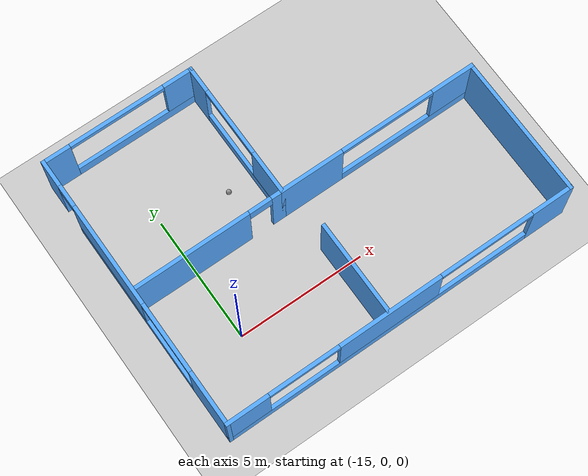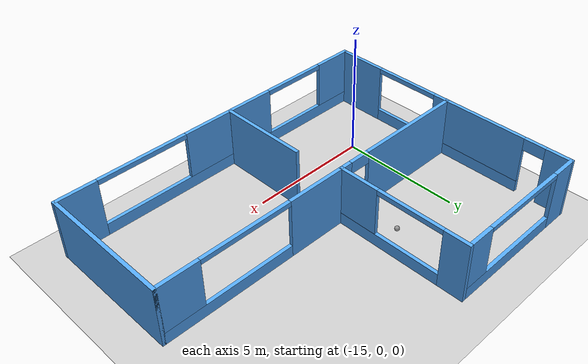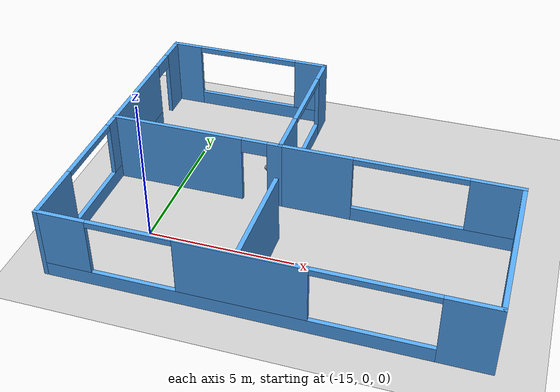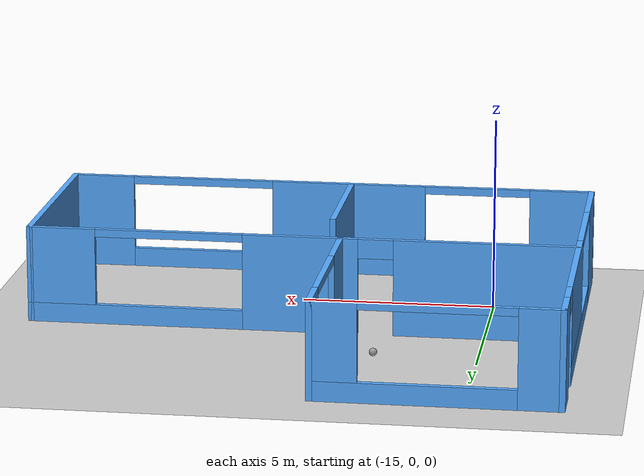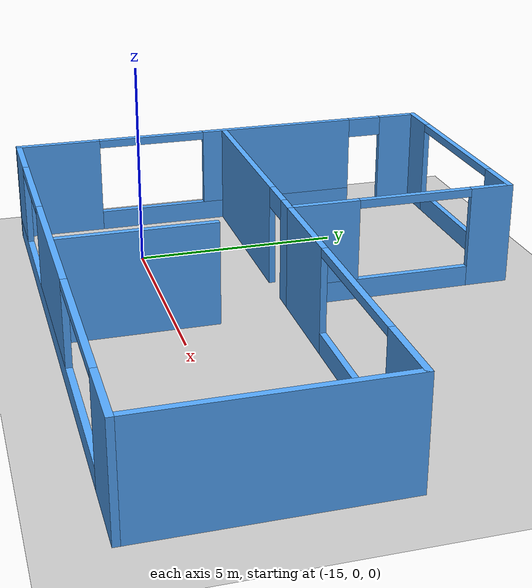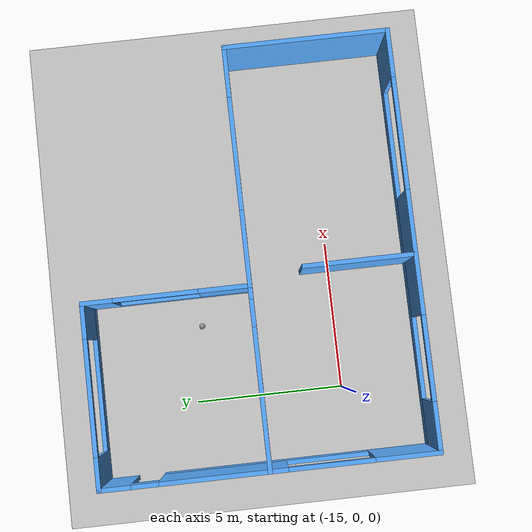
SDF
<sdf version="1.6">
 <world name="default">
  <plugin name="welcome_message" filename="libwelcome_message.so"/>
  <light name="sun" type="directional">
   <pose>0 0 10 0 -0 0</pose>
   <diffuse>0.8 0.8 0.8 1</diffuse>
   <specular>0.2 0.2 0.2 1</specular>
   <attenuation>
    <range>1000</range>
    <constant>0.9</constant>
    <linear>0.01</linear>
    <quadratic>0.001</quadratic>
   </attenuation>
   <direction>-0.5 0.1 -0.9</direction>
  </light>
  <model name="ground_plane">
   <static>1</static>
   <link name="link">
    <collision name="collision">
     <geometry><plane><normal>0 0 1</normal><size>100 100</size></plane></geometry>
     <surface>
      <contact><collide_bitmask>65535</collide_bitmask></contact>
      <friction><ode><mu>100</mu><mu2>50</mu2></ode></friction>
     </surface>
    </collision>
    <visual name="visual">
     <cast_shadows>0</cast_shadows>
     <geometry><plane><normal>0 0 1</normal><size>100 100</size></plane></geometry>
     <material>
      <script><uri>file://media/materials/scripts/gazebo.material</uri><name>Gazebo/Grey</name></script>
     </material>
    </visual>
   </link>
  </model>
  <gravity>0 0 -9.8</gravity>
  <magnetic_field>6e-06 2.3e-05 -4.2e-05</magnetic_field>
  <atmosphere type="adiabatic"/>
  <physics name="default_physics" default="0" type="ode">
   <max_step_size>0.001</max_step_size>
   <real_time_factor>1</real_time_factor>
   <real_time_update_rate>1000</real_time_update_rate>
  </physics>
  <scene><ambient>0.4 0.4 0.4 1</ambient><background>0.7 0.7 0.7 1</background><shadows>1</shadows></scene>
  <spherical_coordinates>
   <surface_model>EARTH_WGS84</surface_model>
   <latitude_deg>0</latitude_deg>
   <longitude_deg>0</longitude_deg>
   <elevation>0</elevation>
   <heading_deg>0</heading_deg>
  </spherical_coordinates>
  <model name="Building">
   <pose>-10.3356 2.78003 0 0 -0 0</pose>
   <link name="Wall_0">
    <pose>-4 5.5 0 0 -0 0</pose>
    <visual name="Wall_0_Visual_0">
     <pose>-2.51087 0 1.25 0 -0 0</pose>
     <geometry><box><size>1.12826 0.15 2.5</size></box></geometry>
     <material>
      <script><uri>file://media/materials/scripts/gazebo.material</uri><name>Gazebo/Grey</name></script>
      <ambient>0.333333 0.666667 1 1</ambient>
     </material>
     <meta><layer>0</layer></meta>
    </visual>
    <collision name="Wall_0_Collision_0">
     <geometry><box><size>1.12826 0.15 2.5</size></box></geometry>
     <pose>-2.51087 0 1.25 0 -0 0</pose>
    </collision>
    <visual name="Wall_0_Visual_1">
     <pose>0.564129 0 0.25 0 -0 0</pose>
     <geometry><box><size>5.02174 0.15 0.5</size></box></geometry>
     <material>
      <script><uri>file://media/materials/scripts/gazebo.material</uri><name>Gazebo/Grey</name></script>
      <ambient>0.333333 0.666667 1 1</ambient>
     </material>
     <meta><layer>0</layer></meta>
    </visual>
    <collision name="Wall_0_Collision_1">
     <geometry><box><size>5.02174 0.15 0.5</size></box></geometry>
     <pose>0.564129 0 0.25 0 -0 0</pose>
    </collision>
    <visual name="Wall_0_Visual_2">
     <pose>2.46413 0 1.5 0 -0 0</pose>
     <geometry><box><size>1.22174 0.15 2</size></box></geometry>
     <material>
      <script><uri>file://media/materials/scripts/gazebo.material</uri><name>Gazebo/Grey</name></script>
      <ambient>0.333333 0.666667 1 1</ambient>
     </material>
     <meta><layer>0</layer></meta>
    </visual>
    <collision name="Wall_0_Collision_2">
     <geometry><box><size>1.22174 0.15 2</size></box></geometry>
     <pose>2.46413 0 1.5 0 -0 0</pose>
    </collision>
    <visual name="Wall_0_Visual_3">
     <pose>-0.046741 0 2.4 0 -0 0</pose>
     <geometry><box><size>3.8 0.15 0.2</size></box></geometry>
     <material>
      <script><uri>file://media/materials/scripts/gazebo.material</uri><name>Gazebo/Grey</name></script>
      <ambient>0.333333 0.666667 1 1</ambient>
     </material>
     <meta><layer>0</layer></meta>
    </visual>
    <collision name="Wall_0_Collision_3">
     <geometry><box><size>3.8 0.15 0.2</size></box></geometry>
     <pose>-0.046741 0 2.4 0 -0 0</pose>
    </collision>
   </link>
   <link name="Wall_1">
    <pose>-1 2.75 0 0 0 -1.5708</pose>
    <visual name="Wall_1_Visual_0">
     <pose>-2.28702 0 1.25 0 -0 0</pose>
     <geometry><box><size>1.07597 0.15 2.5</size></box></geometry>
     <material>
      <script><uri>file://media/materials/scripts/gazebo.material</uri><name>Gazebo/Grey</name></script>
      <ambient>0.333333 0.666667 1 1</ambient>
     </material>
     <meta><layer>0</layer></meta>
    </visual>
    <collision name="Wall_1_Collision_0">
     <geometry><box><size>1.07597 0.15 2.5</size></box></geometry>
     <pose>-2.28702 0 1.25 0 -0 0</pose>
    </collision>
    <visual name="Wall_1_Visual_1">
     <pose>0.537983 0 0.25 0 -0 0</pose>
     <geometry><box><size>4.57403 0.15 0.5</size></box></geometry>
     <material>
      <script><uri>file://media/materials/scripts/gazebo.material</uri><name>Gazebo/Grey</name></script>
      <ambient>0.333333 0.666667 1 1</ambient>
     </material>
     <meta><layer>0</layer></meta>
    </visual>
    <collision name="Wall_1_Collision_1">
     <geometry><box><size>4.57403 0.15 0.5</size></box></geometry>
     <pose>0.537983 0 0.25 0 -0 0</pose>
    </collision>
    <visual name="Wall_1_Visual_2">
     <pose>1.93798 0 1.5 0 -0 0</pose>
     <geometry><box><size>1.77403 0.15 2</size></box></geometry>
     <material>
      <script><uri>file://media/materials/scripts/gazebo.material</uri><name>Gazebo/Grey</name></script>
      <ambient>0.333333 0.666667 1 1</ambient>
     </material>
     <meta><layer>0</layer></meta>
    </visual>
    <collision name="Wall_1_Collision_2">
     <geometry><box><size>1.77403 0.15 2</size></box></geometry>
     <pose>1.93798 0 1.5 0 -0 0</pose>
    </collision>
    <visual name="Wall_1_Visual_3">
     <pose>-0.349034 0 2.4 0 -0 0</pose>
     <geometry><box><size>2.8 0.15 0.2</size></box></geometry>
     <material>
      <script><uri>file://media/materials/scripts/gazebo.material</uri><name>Gazebo/Grey</name></script>
      <ambient>0.333333 0.666667 1 1</ambient>
     </material>
     <meta><layer>0</layer></meta>
    </visual>
    <collision name="Wall_1_Collision_3">
     <geometry><box><size>2.8 0.15 0.2</size></box></geometry>
     <pose>-0.349034 0 2.4 0 -0 0</pose>
    </collision>
   </link>
   <link name="Wall_2">
    <pose>3 0 0 0 -0 0</pose>
    <visual name="Wall_2_Visual_0">
     <pose>-2.78896 0 1.25 0 -0 0</pose>
     <geometry><box><size>2.57208 0.15 2.5</size></box></geometry>
     <material>
      <script><uri>file://media/materials/scripts/gazebo.material</uri><name>Gazebo/Grey</name></script>
      <ambient>0.333333 0.666667 1 1</ambient>
     </material>
     <meta><layer>0</layer></meta>
    </visual>
    <collision name="Wall_2_Collision_0">
     <geometry><box><size>2.57208 0.15 2.5</size></box></geometry>
     <pose>-2.78896 0 1.25 0 -0 0</pose>
    </collision>
    <visual name="Wall_2_Visual_1">
     <pose>1.28604 0 0.25 0 -0 0</pose>
     <geometry><box><size>5.57791 0.15 0.5</size></box></geometry>
     <material>
      <script><uri>file://media/materials/scripts/gazebo.material</uri><name>Gazebo/Grey</name></script>
      <ambient>0.333333 0.666667 1 1</ambient>
     </material>
     <meta><layer>0</layer></meta>
    </visual>
    <collision name="Wall_2_Collision_1">
     <geometry><box><size>5.57791 0.15 0.5</size></box></geometry>
     <pose>1.28604 0 0.25 0 -0 0</pose>
    </collision>
    <visual name="Wall_2_Visual_2">
     <pose>3.18604 0 1.5 0 -0 0</pose>
     <geometry><box><size>1.77791 0.15 2</size></box></geometry>
     <material>
      <script><uri>file://media/materials/scripts/gazebo.material</uri><name>Gazebo/Grey</name></script>
      <ambient>0.333333 0.666667 1 1</ambient>
     </material>
     <meta><layer>0</layer></meta>
    </visual>
    <collision name="Wall_2_Collision_2">
     <geometry><box><size>1.77791 0.15 2</size></box></geometry>
     <pose>3.18604 0 1.5 0 -0 0</pose>
    </collision>
    <visual name="Wall_2_Visual_3">
     <pose>0.397085 0 2.4 0 -0 0</pose>
     <geometry><box><size>3.8 0.15 0.2</size></box></geometry>
     <material>
      <script><uri>file://media/materials/scripts/gazebo.material</uri><name>Gazebo/Grey</name></script>
      <ambient>0.333333 0.666667 1 1</ambient>
     </material>
     <meta><layer>0</layer></meta>
    </visual>
    <collision name="Wall_2_Collision_3">
     <geometry><box><size>3.8 0.15 0.2</size></box></geometry>
     <pose>0.397085 0 2.4 0 -0 0</pose>
    </collision>
   </link>
   <link name="Wall_3">
    <collision name="Wall_3_Collision">
     <geometry><box><size>5.65 0.15 2.5</size></box></geometry>
     <pose>0 0 1.25 0 -0 0</pose>
    </collision>
    <visual name="Wall_3_Visual">
     <pose>0 0 1.25 0 -0 0</pose>
     <geometry><box><size>5.65 0.15 2.5</size></box></geometry>
     <material>
      <script><uri>file://media/materials/scripts/gazebo.material</uri><name>Gazebo/Grey</name></script>
      <ambient>0.333333 0.666667 1 1</ambient>
     </material>
     <meta><layer>0</layer></meta>
    </visual>
    <pose>7 -2.75 0 0 0 -1.5708</pose>
   </link>
   <link name="Wall_4">
    <pose>0 -5.5 0 0 -0 3.14159</pose>
    <visual name="Wall_4_Visual_0">
     <pose>-6.2265 0 1.25 0 -0 0</pose>
     <geometry><box><size>1.697 0.15 2.5</size></box></geometry>
     <material>
      <script><uri>file://media/materials/scripts/gazebo.material</uri><name>Gazebo/Grey</name></script>
      <ambient>0.333333 0.666667 1 1</ambient>
     </material>
     <meta><layer>0</layer></meta>
    </visual>
    <collision name="Wall_4_Collision_0">
     <geometry><box><size>1.697 0.15 2.5</size></box></geometry>
     <pose>-6.2265 0 1.25 0 -0 0</pose>
    </collision>
    <visual name="Wall_4_Visual_1">
     <pose>0.8485 0 0.25 0 -0 0</pose>
     <geometry><box><size>12.453 0.15 0.5</size></box></geometry>
     <material>
      <script><uri>file://media/materials/scripts/gazebo.material</uri><name>Gazebo/Grey</name></script>
      <ambient>0.333333 0.666667 1 1</ambient>
     </material>
     <meta><layer>0</layer></meta>
    </visual>
    <collision name="Wall_4_Collision_1">
     <geometry><box><size>12.453 0.15 0.5</size></box></geometry>
     <pose>0.8485 0 0.25 0 -0 0</pose>
    </collision>
    <visual name="Wall_4_Visual_2">
     <pose>0.493915 0 1.5 0 -0 0</pose>
     <geometry><box><size>4.14383 0.15 2</size></box></geometry>
     <material>
      <script><uri>file://media/materials/scripts/gazebo.material</uri><name>Gazebo/Grey</name></script>
      <ambient>0.333333 0.666667 1 1</ambient>
     </material>
     <meta><layer>0</layer></meta>
    </visual>
    <collision name="Wall_4_Collision_2">
     <geometry><box><size>4.14383 0.15 2</size></box></geometry>
     <pose>0.493915 0 1.5 0 -0 0</pose>
    </collision>
    <visual name="Wall_4_Visual_3">
     <pose>6.22042 0 1.5 0 -0 0</pose>
     <geometry><box><size>1.70917 0.15 2</size></box></geometry>
     <material>
      <script><uri>file://media/materials/scripts/gazebo.material</uri><name>Gazebo/Grey</name></script>
      <ambient>0.333333 0.666667 1 1</ambient>
     </material>
     <meta><layer>0</layer></meta>
    </visual>
    <collision name="Wall_4_Collision_3">
     <geometry><box><size>1.70917 0.15 2</size></box></geometry>
     <pose>6.22042 0 1.5 0 -0 0</pose>
    </collision>
    <visual name="Wall_4_Visual_4">
     <pose>-3.478 0 2.4 0 -0 0</pose>
     <geometry><box><size>3.8 0.15 0.2</size></box></geometry>
     <material>
      <script><uri>file://media/materials/scripts/gazebo.material</uri><name>Gazebo/Grey</name></script>
      <ambient>0.333333 0.666667 1 1</ambient>
     </material>
     <meta><layer>0</layer></meta>
    </visual>
    <collision name="Wall_4_Collision_4">
     <geometry><box><size>3.8 0.15 0.2</size></box></geometry>
     <pose>-3.478 0 2.4 0 -0 0</pose>
    </collision>
    <visual name="Wall_4_Visual_5">
     <pose>3.96583 0 2.4 0 -0 0</pose>
     <geometry><box><size>2.8 0.15 0.2</size></box></geometry>
     <material>
      <script><uri>file://media/materials/scripts/gazebo.material</uri><name>Gazebo/Grey</name></script>
      <ambient>0.333333 0.666667 1 1</ambient>
     </material>
     <meta><layer>0</layer></meta>
    </visual>
    <collision name="Wall_4_Collision_5">
     <geometry><box><size>2.8 0.15 0.2</size></box></geometry>
     <pose>3.96583 0 2.4 0 -0 0</pose>
    </collision>
   </link>
   <link name="Wall_5">
    <pose>-7 0 0 0 -0 1.5708</pose>
    <visual name="Wall_5_Visual_0">
     <pose>-4.48668 0 1.25 0 -0 0</pose>
     <geometry><box><size>2.17663 0.15 2.5</size></box></geometry>
     <material>
      <script><uri>file://media/materials/scripts/gazebo.material</uri><name>Gazebo/Grey</name></script>
      <ambient>0.333333 0.666667 1 1</ambient>
     </material>
     <meta><layer>0</layer></meta>
    </visual>
    <collision name="Wall_5_Collision_0">
     <geometry><box><size>2.17663 0.15 2.5</size></box></geometry>
     <pose>-4.48668 0 1.25 0 -0 0</pose>
    </collision>
    <visual name="Wall_5_Visual_1">
     <pose>5.02726 0 1.25 0 -0 0</pose>
     <geometry><box><size>1.09549 0.15 2.5</size></box></geometry>
     <material>
      <script><uri>file://media/materials/scripts/gazebo.material</uri><name>Gazebo/Grey</name></script>
      <ambient>0.333333 0.666667 1 1</ambient>
     </material>
     <meta><layer>0</layer></meta>
    </visual>
    <collision name="Wall_5_Collision_1">
     <geometry><box><size>1.09549 0.15 2.5</size></box></geometry>
     <pose>5.02726 0 1.25 0 -0 0</pose>
    </collision>
    <visual name="Wall_5_Visual_2">
     <pose>0.090572 0 0.25 0 -0 0</pose>
     <geometry><box><size>6.97788 0.15 0.5</size></box></geometry>
     <material>
      <script><uri>file://media/materials/scripts/gazebo.material</uri><name>Gazebo/Grey</name></script>
      <ambient>0.333333 0.666667 1 1</ambient>
     </material>
     <meta><layer>0</layer></meta>
    </visual>
    <collision name="Wall_5_Collision_2">
     <geometry><box><size>6.97788 0.15 0.5</size></box></geometry>
     <pose>0.090572 0 0.25 0 -0 0</pose>
    </collision>
    <visual name="Wall_5_Visual_3">
     <pose>1.49057 0 1.5 0 -0 0</pose>
     <geometry><box><size>4.17788 0.15 2</size></box></geometry>
     <material>
      <script><uri>file://media/materials/scripts/gazebo.material</uri><name>Gazebo/Grey</name></script>
      <ambient>0.333333 0.666667 1 1</ambient>
     </material>
     <meta><layer>0</layer></meta>
    </visual>
    <collision name="Wall_5_Collision_3">
     <geometry><box><size>4.17788 0.15 2</size></box></geometry>
     <pose>1.49057 0 1.5 0 -0 0</pose>
    </collision>
    <visual name="Wall_5_Visual_4">
     <pose>4.02951 0 2.25 0 -0 0</pose>
     <geometry><box><size>0.9 0.15 0.5</size></box></geometry>
     <material>
      <script><uri>file://media/materials/scripts/gazebo.material</uri><name>Gazebo/Grey</name></script>
      <ambient>0.333333 0.666667 1 1</ambient>
     </material>
     <meta><layer>0</layer></meta>
    </visual>
    <collision name="Wall_5_Collision_4">
     <geometry><box><size>0.9 0.15 0.5</size></box></geometry>
     <pose>4.02951 0 2.25 0 -0 0</pose>
    </collision>
    <visual name="Wall_5_Visual_5">
     <pose>-1.99837 0 2.4 0 -0 0</pose>
     <geometry><box><size>2.8 0.15 0.2</size></box></geometry>
     <material>
      <script><uri>file://media/materials/scripts/gazebo.material</uri><name>Gazebo/Grey</name></script>
      <ambient>0.333333 0.666667 1 1</ambient>
     </material>
     <meta><layer>0</layer></meta>
    </visual>
    <collision name="Wall_5_Collision_5">
     <geometry><box><size>2.8 0.15 0.2</size></box></geometry>
     <pose>-1.99837 0 2.4 0 -0 0</pose>
    </collision>
   </link>
   <link name="Wall_7">
    <collision name="Wall_7_Collision">
     <geometry><box><size>3.75 0.15 2.5</size></box></geometry>
     <pose>0 0 1.25 0 -0 0</pose>
    </collision>
    <visual name="Wall_7_Visual">
     <pose>0 0 1.25 0 -0 0</pose>
     <geometry><box><size>3.75 0.15 2.5</size></box></geometry>
     <material>
      <script><uri>file://media/materials/scripts/gazebo.material</uri><name>Gazebo/Grey</name></script>
      <ambient>0.333333 0.666667 1 1</ambient>
     </material>
     <meta><layer>0</layer></meta>
    </visual>
    <pose>-0.567561 -3.63655 0 0 0 -1.5708</pose>
   </link>
   <link name="Wall_9">
    <pose>-4 0 0 0 -0 0</pose>
    <visual name="Wall_9_Visual_0">
     <pose>-0.713798 0 1.25 0 -0 0</pose>
     <geometry><box><size>4.7224 0.15 2.5</size></box></geometry>
     <material>
      <script><uri>file://media/materials/scripts/gazebo.material</uri><name>Gazebo/Grey</name></script>
      <ambient>0.333333 0.666667 1 1</ambient>
     </material>
     <meta><layer>0</layer></meta>
    </visual>
    <collision name="Wall_9_Collision_0">
     <geometry><box><size>4.7224 0.15 2.5</size></box></geometry>
     <pose>-0.713798 0 1.25 0 -0 0</pose>
    </collision>
    <visual name="Wall_9_Visual_1">
     <pose>2.8112 0 1.25 0 -0 0</pose>
     <geometry><box><size>0.527596 0.15 2.5</size></box></geometry>
     <material>
      <script><uri>file://media/materials/scripts/gazebo.material</uri><name>Gazebo/Grey</name></script>
      <ambient>0.333333 0.666667 1 1</ambient>
     </material>
     <meta><layer>0</layer></meta>
    </visual>
    <collision name="Wall_9_Collision_1">
     <geometry><box><size>0.527596 0.15 2.5</size></box></geometry>
     <pose>2.8112 0 1.25 0 -0 0</pose>
    </collision>
    <visual name="Wall_9_Visual_2">
     <pose>2.0974 0 2.25 0 -0 0</pose>
     <geometry><box><size>0.9 0.15 0.5</size></box></geometry>
     <material>
      <script><uri>file://media/materials/scripts/gazebo.material</uri><name>Gazebo/Grey</name></script>
      <ambient>0.333333 0.666667 1 1</ambient>
     </material>
     <meta><layer>0</layer></meta>
    </visual>
    <collision name="Wall_9_Collision_2">
     <geometry><box><size>0.9 0.15 0.5</size></box></geometry>
     <pose>2.0974 0 2.25 0 -0 0</pose>
    </collision>
   </link>
   <static>1</static>
  </model>
  <model name="my_ball_0">
   <link name="link">
    <pose>0 0 -0.4 0 -0 0</pose>
    <inertial>
     <mass>1</mass>
     <inertia><ixx>0.1</ixx><ixy>0</ixy><ixz>0</ixz><iyy>0.1</iyy><iyz>0</iyz><izz>0.1</izz></inertia>
    </inertial>
    <visual name="visual">
     <geometry><sphere><radius>0.1</radius></sphere></geometry>
     <material>
      <script><name>Gazebo/Grey</name><uri>file://media/materials/scripts/gazebo.material</uri></script>
      <shader type="pixel"><normal_map>__default__</normal_map></shader>
      <ambient>1 1 1 1</ambient>
      <diffuse>1 1 1 1</diffuse>
      <specular>1 1 1 1</specular>
      <emissive>1 1 1 1</emissive>
     </material>
    </visual>
    <collision name="collision">
     <geometry><sphere><radius>0.1</radius></sphere></geometry>
     <surface>
      <friction>
       <ode><mu>1</mu><mu2>1</mu2><fdir1>0 0 0</fdir1><slip1>0</slip1><slip2>0</slip2></ode>
       <torsional>
        <coefficient>1</coefficient>
        <patch_radius>0</patch_radius>
        <surface_radius>0</surface_radius>
        <use_patch_radius>1</use_patch_radius>
        <ode><slip>0</slip></ode>
       </torsional>
      </friction>
      <bounce><restitution_coefficient>0</restitution_coefficient><threshold>1e+06</threshold></bounce>
      <contact>
       <collide_without_contact>0</collide_without_contact>
       <collide_without_contact_bitmask>1</collide_without_contact_bitmask>
       <collide_bitmask>1</collide_bitmask>
       <ode>
        <soft_cfm>0</soft_cfm>
        <soft_erp>0.2</soft_erp>
        <kp>1e+13</kp>
        <kd>1</kd>
        <max_vel>0.01</max_vel>
        <min_depth>0</min_depth>
       </ode>
       <bullet>
        <split_impulse>1</split_impulse>
        <split_impulse_penetration_threshold>-0.01</split_impulse_penetration_threshold>
        <soft_cfm>0</soft_cfm>
        <soft_erp>0.2</soft_erp>
        <kp>1e+13</kp>
        <kd>1</kd>
       </bullet>
      </contact>
     </surface>
    </collision>
   </link>
   <static>0</static>
   <pose>-12.4123 4.58729 0.499924 0.005026 -0.018816 -1.9e-05</pose>
  </model>
  <plugin filename="libcollision_map_creator.so" name="collision_map_creator"/>
 </world>
</sdf>
